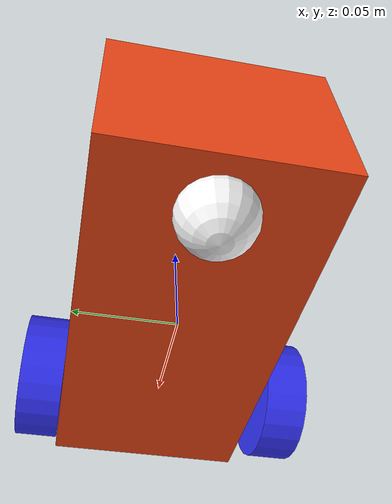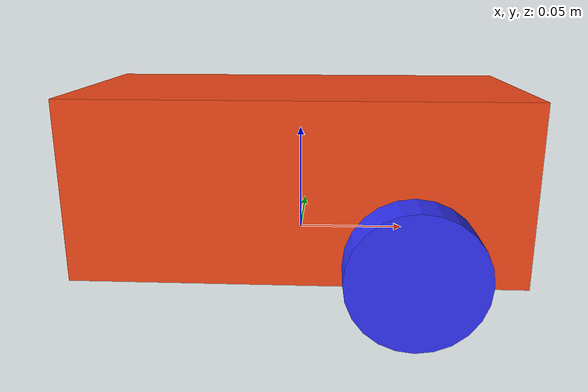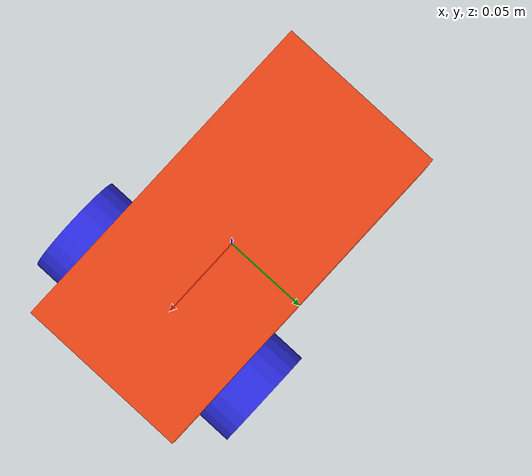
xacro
<?xml version="1.0"?>
<robot xmlns:xacro="http://www.ros.org/wiki/xacro"  name="robot">

    <!-- Example link -->
    <xacro:arg name="ns" default="robot1"/>
    <xacro:property name="ns" value="$(arg ns)"/>
    <xacro:include filename="robot_core.xacro"/>
    <xacro:include filename="gazebo_control.xacro" />
    <xacro:gazebo_control ns="${ns}"/>
</robot>

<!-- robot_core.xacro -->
<robot xmlns:xacro="http://www.ros.org/wiki/xacro" >

    <xacro:include filename="inertial_macros.xacro"/>

    <material name="white">
        <color rgba="1 1 1 1" />
    </material>
    <material name="orange">
        <color rgba="1 0.3 0.1 1"/>
    </material>
    <material name="blue">
        <color rgba="0.2 0.2 1 1"/>
    </material>
    <material name="black">
        <color rgba="0 0 0 1"/>
    </material>
    <material name="red">
        <color rgba="1 0 0 1"/>
    </material>

    <!-- ======= Base link ======= -->
    <link name="base_link"/>
    <joint name="base_footprint_joint" type="fixed">
        <parent link="base_link"/>
        <child link="base_footprint"/>
        <origin xyz="0 0 0" rpy="0 0 0"/>
    </joint>
    <link name="base_footprint"/>

    <!-- ======= Chassis ======= -->
    <joint name="chassis_joint" type="fixed">
        <parent link="base_link"/>
        <child link="chassis"/>
        <origin xyz="0 0 0"/>
    </joint>
    <link name="chassis">
        <visual>
            <origin xyz="0 0 0.03"/>
            <geometry>
                <box size="0.2 0.1 0.08"/>
            </geometry>
            <material name="orange"/>
        </visual>
        <collision>
            <origin xyz="0 0 0.03"/>
            <geometry>
                <box size="0.2 0.1 0.08"/>
            </geometry>
        </collision>
        <inertial>
            <mass value="10"/> <!-- 任意合理質量 -->
            <inertia ixx="1" ixy="0" ixz="0" iyy="1" iyz="0" izz="1"/>
            <origin xyz="0 0 0" rpy="0 0 0"/>
        </inertial>
    </link>
    <gazebo reference="chassis">
        <material>Gazebo/Orange</material>
    </gazebo>

    <!-- ======= Left Wheel ======= -->
    <joint name="left_wheel_joint" type="continuous">
        <parent link="base_link"/>
        <child link="left_wheel"/>
        <origin xyz="0.05 0.06 0" rpy="-${pi/2} 0 0"/>
        <axis xyz="0 0 1"/>
    </joint>
    <link name="left_wheel">
        <visual>
            <geometry>
                <cylinder radius="0.03" length="0.02"/>
            </geometry>
            <material name="blue"/>
        </visual>
        <collision>
            <geometry>
                <sphere radius="0.03"/>
            </geometry>
        </collision>
        <xacro:inertial_cylinder mass="0.05" length="0.02" radius="0.03">
            <origin xyz="0 0 0" rpy="0 0 0"/>
        </xacro:inertial_cylinder>
    </link>
    <gazebo reference="left_wheel">
        <material>Gazebo/Blue</material>
    </gazebo>

    <!-- ======= Right Wheel ======= -->
    <joint name="right_wheel_joint" type="continuous">
        <parent link="base_link"/>
        <child link="right_wheel"/>
        <origin xyz="0.05 -0.06 0" rpy="${pi/2} 0 0"/>
        <axis xyz="0 0 -1"/>
    </joint>
    <link name="right_wheel">
        <visual>
            <geometry>
                <cylinder radius="0.03" length="0.02"/>
            </geometry>
            <material name="blue"/>
        </visual>
        <collision>
            <geometry>
                <sphere radius="0.03"/>
            </geometry>
        </collision>
        <xacro:inertial_cylinder mass="0.05" length="0.02" radius="0.03">
            <origin xyz="0 0 0" rpy="0 0 0"/>
        </xacro:inertial_cylinder>
    </link>
    <gazebo reference="right_wheel">
        <material>Gazebo/Blue</material>
    </gazebo>

    <!-- ======= Caster Wheel ======= -->
    <joint name="caster_wheel_joint" type="fixed">
        <parent link="chassis"/>
        <child link="caster_wheel"/>
        <origin xyz="-0.075 0 -0.013"/>
    </joint>
    <link name="caster_wheel">
        <visual>
            <geometry>
                <sphere radius="0.017"/>
            </geometry>
            <material name="white"/>
        </visual>
        <collision>
            <geometry>
                <sphere radius="0.017"/>
            </geometry>
        </collision>
        <xacro:inertial_sphere mass="0.01" radius="0.017">
            <origin xyz="0 0 0" rpy="0 0 0"/>
        </xacro:inertial_sphere>
    </link>
    <gazebo reference="caster_wheel">
        <material>Gazebo/White</material>
        <mu1 value="0.001"/>
        <mu2 value="0.001"/>
    </gazebo>

</robot>
